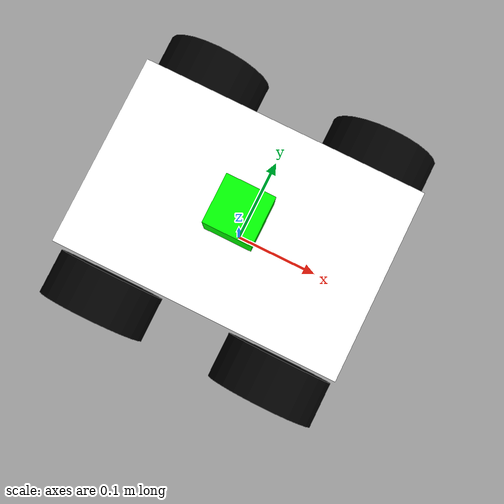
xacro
<?xml version="1.0"?>

<robot name="leader_robot" xmlns:xacro="http://www.ros.org/wiki/xacro">
    <xacro:property name="type" value="slave" />
    <xacro:property name="length_wheel" value="0.05" />
    <xacro:property name="radius_wheel" value="0.06" />
    <xacro:property name="PI" value="3.1415926"/>
    <xacro:macro name="default_inertial" params="mass">
        <inertial>
            <mass value="${mass}" />
            <inertia ixx="0.01" ixy="0.0" ixz="0.0"
                    iyy="0.01" iyz="0.0" izz="0.01" />
        </inertial>
    </xacro:macro>

    <link name="${type}_base_footprint" />

    <joint name="${type}_base_joint" type="fixed">
        <parent link="${type}_base_footprint" />
        <child link="${type}_base_link" />
        <origin xyz="0.0 0.0 0.0919" rpy="0 0 0" />
    </joint>

    <link name="${type}_base_link">
        <visual>
            <geometry>
                <box size="0.2 .3 .1"/>
            </geometry>
            <origin rpy="0 0 ${PI/2}" xyz="0 0 0.05"/>
            <material name="white">
                <color rgba="1 1 1 1"/>
            </material>
        </visual>
        <collision>
            <geometry>
                <box size="0.2 .3 0.1"/>
            </geometry>
            <origin rpy="0 0 ${PI/2}" xyz="0 0 0.05"/>
        </collision>
        <xacro:default_inertial mass="8.2"/>
    </link>

    <link name="${type}_wheel_1">
        <visual>
            <geometry>
                <cylinder length="${length_wheel}" radius="${radius_wheel}"/>
            </geometry>
            <origin rpy="0 0 0" xyz="0 0 0"/>
            <material name="black">
                <color rgba="0 0 0 1"/>
            </material>
        </visual>
        <collision>
            <geometry>
                <cylinder length="${length_wheel}" radius="${radius_wheel}"/>
            </geometry>
        </collision>
        <mu1>0.5</mu1>
        <mu2>0.5</mu2>
        <xacro:default_inertial mass="0.5"/>
    </link>

    <link name="${type}_wheel_2">
        <visual>
            <geometry>
                <cylinder length="${length_wheel}" radius="${radius_wheel}"/>
            </geometry>
            <origin rpy="0 0 0" xyz="0 0 0"/>
            <material name="black"/>
        </visual>
        <collision>
            <geometry>
                <cylinder length="${length_wheel}" radius="${radius_wheel}"/>
            </geometry>
        </collision>
        <mu1>0.5</mu1>
        <mu2>0.5</mu2>
        <xacro:default_inertial mass="0.5"/>
    </link>

    <link name="${type}_wheel_3">
        <visual>
            <geometry>
                <cylinder length="${length_wheel}" radius="${radius_wheel}"/>
            </geometry>
            <origin rpy="0 0 0" xyz="0 0 0"/>
            <material name="black"/>
        </visual>
        <collision>
            <geometry>
                <cylinder length="${length_wheel}" radius="${radius_wheel}"/>
            </geometry>
        </collision>
        <mu1>0.5</mu1>
        <mu2>0.5</mu2>
        <xacro:default_inertial mass="0.5"/>
    </link>

    <link name="${type}_wheel_4">
        <visual>
            <geometry>
                <cylinder length="${length_wheel}" radius="${radius_wheel}"/>
            </geometry>
            <origin rpy="0 0 0" xyz="0 0 0" />
            <material name="black"/>
        </visual>
        <collision>
            <geometry>
                <cylinder length="${length_wheel}" radius="${radius_wheel}"/>
            </geometry>
        </collision>
        <mu1>0.5</mu1>
        <mu2>0.5</mu2>
        <xacro:default_inertial mass="0.5"/>
    </link>

    <joint name="${type}_base_to_wheel1" type="continuous">
        <parent link="${type}_base_link"/>
        <child link="${type}_wheel_1"/>
        <origin rpy="${-PI/2} 0 0" xyz="0.1 0.13 0"/>
        <axis xyz="0 0 1" />
    </joint>

    <joint name="${type}_base_to_wheel2" type="continuous">
        <axis xyz="0 0 1" />
        <anchor xyz="0 0 0" />
        <limit effort="100" velocity="100" />
        <parent link="${type}_base_link"/>
        <child link="${type}_wheel_2"/>
        <origin rpy="${-PI/2} 0 0" xyz="-0.1 0.13 0"/>
    </joint>

    <joint name="${type}_base_to_wheel3" type="continuous">
        <parent link="${type}_base_link"/>
        <axis xyz="0 0 1" />
        <child link="${type}_wheel_3"/>
        <origin rpy="${-PI/2} 0 0" xyz="0.1 -0.13 0"/>
    </joint>

    <joint name="${type}_base_to_wheel4" type="continuous">
        <parent link="${type}_base_link"/>
        <axis xyz="0 0 1" />
        <child link="${type}_wheel_4"/>
        <origin rpy="${-PI/2} 0 0" xyz="-0.1 -0.13 0"/>
    </joint>

    <!-- IMU joint -->
    <joint name="${type}_imu_joint" type="fixed">
        <axis xyz="0 1 0" />
        <origin xyz="0 0 0.125" rpy="0 0 0"/>
        <parent link="${type}_base_link"/>
        <child link="${type}_imu_link"/>
    </joint>

    <!-- IMU -->
    <link name="${type}_imu_link">
        <collision>
            <origin xyz="0 0 0" rpy="0 0 0"/>
            <geometry>
                <box size="0.05 0.05 0.05"/>
            </geometry>
        </collision>

        <visual>
            <origin xyz="0 0 0" rpy="0 0 0"/>
            <geometry>
                <box size="0.05 0.05 0.05"/>
            </geometry>
            <material name="green">
                <color rgba="0 1 0 1"/>
            </material>
        </visual>

        <inertial>
            <mass value="1e-2" />
            <origin xyz="0 0 0" rpy="0 0 0"/>
            <inertia ixx="1e-6" ixy="0" ixz="0" iyy="1e-6" iyz="0" izz="1e-6" />
        </inertial>
    </link>

    <!-- gazebo插件设置相关 -->

    <gazebo reference="${type}_base_link">
        <material>Gazebo/Orange</material>
    </gazebo>

    <gazebo reference="${type}_wheel_1">
        <material>Gazebo/Red</material>
    </gazebo>

    <gazebo reference="${type}_wheel_2">
        <material>Gazebo/Black</material>
    </gazebo>

    <gazebo reference="${type}_wheel_3">
        <material>Gazebo/Red</material>
    </gazebo>

    <gazebo reference="${type}_wheel_4">
        <material>Gazebo/Black</material>
    </gazebo>

    <!-- Drive controller -->
    <gazebo>
        <plugin name="${type}_mecanum_controller" filename="libgazebo_ros_planar_move.so">
            <ros>
                <remapping>cmd_vel:=/${type}/cmd_vel</remapping>
                <remapping>odom:=/${type}/odom</remapping>
            </ros>

            <update_rate>100</update_rate>
            <publish_rate>100</publish_rate>

            <publish_odom>true</publish_odom>
            <publish_odom_tf>true</publish_odom_tf>

            <odometry_frame>/${type}/odom</odometry_frame>
            <robot_base_frame>${type}_base_footprint</robot_base_frame>

            <leftFrontJoint>${type}_base_to_wheel1</leftFrontJoint>
            <rightFrontJoint>${type}_base_to_wheel3</rightFrontJoint>
            <leftRearJoint>${type}_base_to_wheel2</leftRearJoint>
            <rightRearJoint>${type}_base_to_wheel4</rightRearJoint>
            <wheelSeparation>0.26</wheelSeparation>
            <wheelDiameter>0.12</wheelDiameter>
        </plugin>
    </gazebo>

    <!-- imu控制 -->
    <gazebo reference="${type}_imu_link">
        <material>Gazebo/Orange</material>
        <gravity>true</gravity>
        <sensor name="imu_sensor" type="imu">
            <always_on>true</always_on>
            <update_rate>100</update_rate>
            <visualize>true</visualize>
            <topic>__default_topic__</topic>
            <plugin filename="libgazebo_ros_imu_sensor.so" name="${type}_imu_plugin">
                <topicName>/${type}/imu</topicName>
                <bodyName>${type}_imu_link</bodyName>
                <updateRateHZ>100.0</updateRateHZ>
                <gaussianNoise>0.0</gaussianNoise>
                <xyzOffset>0 0 0</xyzOffset>
                <rpyOffset>0 0 0</rpyOffset>
                <frameName>${type}_imu_link</frameName>
                <serviceName>default_service</serviceName>
                <alwaysOn>true</alwaysOn>
                <maxAngularVelocity>100.0</maxAngularVelocity>
                <noiseDensity>0.0</noiseDensity>
                <randomWalk>0.0</randomWalk>
                <ros>
                    <remapping>~/out:=/${type}/imu</remapping>
                </ros>
            </plugin>
        </sensor>
    </gazebo>

    <!-- Livox-Mid360  -->

</robot>
